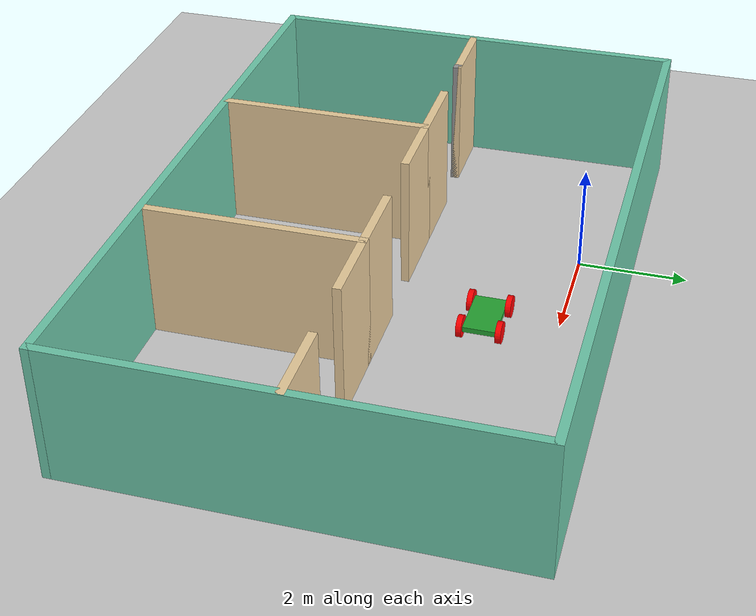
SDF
<sdf version="1.6">
 <world name="default">
  <model name="ground_plane">
   <static>1</static>
   <link name="link">
    <collision name="collision">
     <geometry><plane><normal>0 0 1</normal><size>100 100</size></plane></geometry>
     <surface><friction><ode><mu>100</mu><mu2>50</mu2></ode></friction></surface>
    </collision>
    <visual name="visual">
     <cast_shadows>0</cast_shadows>
     <geometry><plane><normal>0 0 1</normal><size>100 100</size></plane></geometry>
     <material>
      <script><uri>file://media/materials/scripts/gazebo.material</uri><name>Gazebo/Grey</name></script>
     </material>
    </visual>
   </link>
  </model>
  <model name="RobotOffice">
   <pose>1.99675 -2.98962 0 0 -0 0</pose>
   <link name="Wall_17">
    <collision name="Wall_17_Collision">
     <geometry><box><size>12.0004 0.15 2.5</size></box></geometry>
     <pose>0 0 1.25 0 -0 0</pose>
    </collision>
    <visual name="Wall_17_Visual">
     <pose>0 0 1.25 0 -0 0</pose>
     <geometry><box><size>12.0004 0.15 2.5</size></box></geometry>
     <material>
      <script><uri>file://media/materials/scripts/gazebo.material</uri><name>Gazebo/Grey</name></script>
      <ambient>0.435294 0.796078 0.67451 1</ambient>
     </material>
     <meta><layer>0</layer></meta>
    </visual>
    <pose>-2e-06 3.925 0 0 0 -3.14159</pose>
   </link>
   <link name="Wall_19">
    <collision name="Wall_19_Collision">
     <geometry><box><size>8 0.15 2.5</size></box></geometry>
     <pose>0 0 1.25 0 -0 0</pose>
    </collision>
    <visual name="Wall_19_Visual">
     <pose>0 0 1.25 0 -0 0</pose>
     <geometry><box><size>8 0.15 2.5</size></box></geometry>
     <material>
      <script><uri>file://media/materials/scripts/gazebo.material</uri><name>Gazebo/Grey</name></script>
      <ambient>0.435294 0.796078 0.67451 1</ambient>
     </material>
     <meta><layer>0</layer></meta>
    </visual>
    <pose>-5.92522 -3.8e-05 0 0 0 -1.5708</pose>
   </link>
   <link name="Wall_20">
    <collision name="Wall_20_Collision">
     <geometry><box><size>12 0.15 2.5</size></box></geometry>
     <pose>0 0 1.25 0 -0 0</pose>
    </collision>
    <visual name="Wall_20_Visual">
     <pose>0 0 1.25 0 -0 0</pose>
     <geometry><box><size>12 0.15 2.5</size></box></geometry>
     <material>
      <script><uri>file://media/materials/scripts/gazebo.material</uri><name>Gazebo/Grey</name></script>
      <ambient>0.435294 0.796078 0.67451 1</ambient>
     </material>
     <meta><layer>0</layer></meta>
    </visual>
    <pose>-0.000217 -3.92504 0 0 -0 0</pose>
   </link>
   <link name="Wall_21">
    <collision name="Wall_21_Collision">
     <geometry><box><size>8 0.15 2.5</size></box></geometry>
     <pose>0 0 1.25 0 -0 0</pose>
    </collision>
    <visual name="Wall_21_Visual">
     <pose>0 0 1.25 0 -0 0</pose>
     <geometry><box><size>8 0.15 2.5</size></box></geometry>
     <material>
      <script><uri>file://media/materials/scripts/gazebo.material</uri><name>Gazebo/Grey</name></script>
      <ambient>0.435294 0.796078 0.67451 1</ambient>
     </material>
     <meta><layer>0</layer></meta>
    </visual>
    <pose>5.925 0 0 0 -0 1.57074</pose>
   </link>
   <link name="Wall_27">
    <collision name="Wall_27_Collision">
     <geometry><box><size>1.5 0.15 2.5</size></box></geometry>
     <pose>0 0 1.25 0 -0 0</pose>
    </collision>
    <visual name="Wall_27_Visual">
     <pose>0 0 1.25 0 -0 0</pose>
     <geometry><box><size>1.5 0.15 2.5</size></box></geometry>
     <material>
      <script><uri>file://media/materials/scripts/gazebo.material</uri><name>Gazebo/Grey</name></script>
      <ambient>0.921569 0.807843 0.615686 1</ambient>
     </material>
     <meta><layer>0</layer></meta>
    </visual>
    <pose>-5.24522 -0.018038 0 0 -0 0</pose>
   </link>
   <link name="Wall_29">
    <collision name="Wall_29_Collision">
     <geometry><box><size>1.51521 0.15 2.5</size></box></geometry>
     <pose>0 0 1.25 0 -0 0</pose>
    </collision>
    <visual name="Wall_29_Visual">
     <pose>0 0 1.25 0 -0 0</pose>
     <geometry><box><size>1.51521 0.15 2.5</size></box></geometry>
     <material>
      <script><uri>file://media/materials/scripts/gazebo.material</uri><name>Gazebo/Grey</name></script>
      <ambient>0.921569 0.807843 0.615686 1</ambient>
     </material>
     <meta><layer>0</layer></meta>
    </visual>
    <pose>-2.71606 -0.018038 0 0 -0 0</pose>
   </link>
   <link name="Wall_31">
    <collision name="Wall_31_Collision">
     <geometry><box><size>0.15 0.15 2.5</size></box></geometry>
     <pose>0 0 1.25 0 -0 0</pose>
    </collision>
    <visual name="Wall_31_Visual">
     <pose>0 0 1.25 0 -0 0</pose>
     <geometry><box><size>0.15 0.15 2.5</size></box></geometry>
     <material>
      <script><uri>file://media/materials/scripts/gazebo.material</uri><name>Gazebo/Grey</name></script>
      <ambient>1 1 1 1</ambient>
     </material>
     <meta><layer>0</layer></meta>
    </visual>
    <pose>-4.57022 -0.029538 0 0 -0 0</pose>
   </link>
   <link name="Wall_34">
    <collision name="Wall_34_Collision">
     <geometry><box><size>4 0.15 2.5</size></box></geometry>
     <pose>0 0 1.25 0 -0 0</pose>
    </collision>
    <visual name="Wall_34_Visual">
     <pose>0 0 1.25 0 -0 0</pose>
     <geometry><box><size>4 0.15 2.5</size></box></geometry>
     <material>
      <script><uri>file://media/materials/scripts/gazebo.material</uri><name>Gazebo/Grey</name></script>
      <ambient>0.921569 0.807843 0.615686 1</ambient>
     </material>
     <meta><layer>0</layer></meta>
    </visual>
    <pose>-2.03322 -1.94304 0 0 0 -1.5708</pose>
   </link>
   <link name="Wall_36">
    <collision name="Wall_36_Collision">
     <geometry><box><size>1.5 0.15 2.5</size></box></geometry>
     <pose>0 0 1.25 0 -0 0</pose>
    </collision>
    <visual name="Wall_36_Visual">
     <pose>0 0 1.25 0 -0 0</pose>
     <geometry><box><size>1.5 0.15 2.5</size></box></geometry>
     <material>
      <script><uri>file://media/materials/scripts/gazebo.material</uri><name>Gazebo/Grey</name></script>
      <ambient>0.921569 0.807843 0.615686 1</ambient>
     </material>
     <meta><layer>0</layer></meta>
    </visual>
    <pose>-1.35845 -0.018038 0 0 -0 0</pose>
   </link>
   <link name="Wall_43">
    <collision name="Wall_43_Collision">
     <geometry><box><size>1.5 0.15 2.5</size></box></geometry>
     <pose>0 0 1.25 0 -0 0</pose>
    </collision>
    <visual name="Wall_43_Visual">
     <pose>0 0 1.25 0 -0 0</pose>
     <geometry><box><size>1.5 0.15 2.5</size></box></geometry>
     <material>
      <script><uri>file://media/materials/scripts/gazebo.material</uri><name>Gazebo/Grey</name></script>
      <ambient>0.921569 0.807843 0.615686 1</ambient>
     </material>
     <meta><layer>0</layer></meta>
    </visual>
    <pose>5.23878 -0.018038 0 0 -0 0</pose>
   </link>
   <link name="Wall_45">
    <collision name="Wall_45_Collision">
     <geometry><box><size>4 0.15 2.5</size></box></geometry>
     <pose>0 0 1.25 0 -0 0</pose>
    </collision>
    <visual name="Wall_45_Visual">
     <pose>0 0 1.25 0 -0 0</pose>
     <geometry><box><size>4 0.15 2.5</size></box></geometry>
     <material>
      <script><uri>file://media/materials/scripts/gazebo.material</uri><name>Gazebo/Grey</name></script>
      <ambient>0.921569 0.807843 0.615686 1</ambient>
     </material>
     <meta><layer>0</layer></meta>
    </visual>
    <pose>1.92178 -1.94304 0 0 0 -1.5708</pose>
   </link>
   <link name="Wall_47">
    <collision name="Wall_47_Collision">
     <geometry><box><size>1.5 0.15 2.5</size></box></geometry>
     <pose>0 0 1.25 0 -0 0</pose>
    </collision>
    <visual name="Wall_47_Visual">
     <pose>0 0 1.25 0 -0 0</pose>
     <geometry><box><size>1.5 0.15 2.5</size></box></geometry>
     <material>
      <script><uri>file://media/materials/scripts/gazebo.material</uri><name>Gazebo/Grey</name></script>
      <ambient>0.921569 0.807843 0.615686 1</ambient>
     </material>
     <meta><layer>0</layer></meta>
    </visual>
    <pose>1.24678 -0.018038 0 0 -0 0</pose>
   </link>
   <link name="Wall_51">
    <collision name="Wall_51_Collision">
     <geometry><box><size>1.5 0.15 2.5</size></box></geometry>
     <pose>0 0 1.25 0 -0 0</pose>
    </collision>
    <visual name="Wall_51_Visual">
     <pose>0 0 1.25 0 -0 0</pose>
     <geometry><box><size>1.5 0.15 2.5</size></box></geometry>
     <material>
      <script><uri>file://media/materials/scripts/gazebo.material</uri><name>Gazebo/Grey</name></script>
      <ambient>0.921569 0.807843 0.615686 1</ambient>
     </material>
     <meta><layer>0</layer></meta>
    </visual>
    <pose>2.59678 -0.018038 0 0 -0 0</pose>
   </link>
   <static>1</static>
  </model>
  <model name="ServiceRobot">
   <link name="link_0">
    <inertial>
     <mass>1</mass>
     <inertia>
      <ixx>0.166667</ixx>
      <ixy>0</ixy>
      <ixz>0</ixz>
      <iyy>0.166667</iyy>
      <iyz>0</iyz>
      <izz>0.166667</izz>
     </inertia>
    </inertial>
    <visual name="visual">
     <geometry><box><size>1 0.6 0.1</size></box></geometry>
     <material>
      <lighting>1</lighting>
      <script><uri>file://media/materials/scripts/gazebo.material</uri><name>Gazebo/Green</name></script>
      <shader type="pixel"><normal_map>__default__</normal_map></shader>
      <ambient>0 1 0 1</ambient>
      <diffuse>0.7 0.7 0.7 1</diffuse>
      <specular>0.01 0.01 0.01 1</specular>
      <emissive>0 0 0 1</emissive>
     </material>
    </visual>
    <collision name="collision">
     <geometry><box><size>1 0.6 0.1</size></box></geometry>
     <surface>
      <friction>
       <ode><mu>1</mu><mu2>1</mu2><fdir1>0 0 0</fdir1><slip1>0</slip1><slip2>0</slip2></ode>
       <torsional>
        <coefficient>1</coefficient>
        <patch_radius>0</patch_radius>
        <surface_radius>0</surface_radius>
        <use_patch_radius>1</use_patch_radius>
        <ode><slip>0</slip></ode>
       </torsional>
      </friction>
      <bounce><restitution_coefficient>0</restitution_coefficient><threshold>1e+06</threshold></bounce>
      <contact>
       <collide_without_contact>0</collide_without_contact>
       <collide_without_contact_bitmask>1</collide_without_contact_bitmask>
       <collide_bitmask>1</collide_bitmask>
       <ode>
        <soft_cfm>0</soft_cfm>
        <soft_erp>0.2</soft_erp>
        <kp>1e+13</kp>
        <kd>1</kd>
        <max_vel>0.01</max_vel>
        <min_depth>0</min_depth>
       </ode>
       <bullet>
        <split_impulse>1</split_impulse>
        <split_impulse_penetration_threshold>-0.01</split_impulse_penetration_threshold>
        <soft_cfm>0</soft_cfm>
        <soft_erp>0.2</soft_erp>
        <kp>1e+13</kp>
        <kd>1</kd>
       </bullet>
      </contact>
     </surface>
    </collision>
   </link>
   <link name="link_1">
    <pose>0.4 -0.35 0 1.57 -0 0</pose>
    <inertial>
     <mass>1</mass>
     <inertia><ixx>0.145833</ixx><ixy>0</ixy><ixz>0</ixz><iyy>0.145833</iyy><iyz>0</iyz><izz>0.125</izz></inertia>
    </inertial>
    <visual name="visual">
     <geometry><cylinder><radius>0.2</radius><length>0.1</length></cylinder></geometry>
     <material>
      <lighting>1</lighting>
      <script><uri>file://media/materials/scripts/gazebo.material</uri><name>Gazebo/Grey</name></script>
      <shader type="pixel"><normal_map>__default__</normal_map></shader>
      <ambient>1 0 0 1</ambient>
      <diffuse>0.7 0.7 0.7 1</diffuse>
      <specular>0.01 0.01 0.01 1</specular>
      <emissive>0 0 0 1</emissive>
     </material>
    </visual>
    <collision name="collision">
     <geometry><cylinder><radius>0.2</radius><length>0.1</length></cylinder></geometry>
     <surface>
      <friction>
       <ode><mu>1</mu><mu2>1</mu2><fdir1>0 0 0</fdir1><slip1>0</slip1><slip2>0</slip2></ode>
       <torsional>
        <coefficient>1</coefficient>
        <patch_radius>0</patch_radius>
        <surface_radius>0</surface_radius>
        <use_patch_radius>1</use_patch_radius>
        <ode><slip>0</slip></ode>
       </torsional>
      </friction>
      <bounce><restitution_coefficient>0</restitution_coefficient><threshold>1e+06</threshold></bounce>
      <contact>
       <collide_without_contact>0</collide_without_contact>
       <collide_without_contact_bitmask>1</collide_without_contact_bitmask>
       <collide_bitmask>1</collide_bitmask>
       <ode>
        <soft_cfm>0</soft_cfm>
        <soft_erp>0.2</soft_erp>
        <kp>1e+13</kp>
        <kd>1</kd>
        <max_vel>0.01</max_vel>
        <min_depth>0</min_depth>
       </ode>
       <bullet>
        <split_impulse>1</split_impulse>
        <split_impulse_penetration_threshold>-0.01</split_impulse_penetration_threshold>
        <soft_cfm>0</soft_cfm>
        <soft_erp>0.2</soft_erp>
        <kp>1e+13</kp>
        <kd>1</kd>
       </bullet>
      </contact>
     </surface>
    </collision>
   </link>
   <link name="link_1_clone">
    <pose>0.4 0.35 -0 1.57 -0 0</pose>
    <inertial>
     <mass>1</mass>
     <inertia><ixx>0.145833</ixx><ixy>0</ixy><ixz>0</ixz><iyy>0.145833</iyy><iyz>0</iyz><izz>0.125</izz></inertia>
    </inertial>
    <visual name="visual">
     <geometry><cylinder><radius>0.2</radius><length>0.1</length></cylinder></geometry>
     <material>
      <lighting>1</lighting>
      <script><uri>file://media/materials/scripts/gazebo.material</uri><name>Gazebo/Grey</name></script>
      <shader type="pixel"><normal_map>__default__</normal_map></shader>
      <ambient>1 0 0 1</ambient>
      <diffuse>0.7 0.7 0.7 1</diffuse>
      <specular>0.01 0.01 0.01 1</specular>
      <emissive>0 0 0 1</emissive>
     </material>
    </visual>
    <collision name="collision">
     <geometry><cylinder><radius>0.2</radius><length>0.1</length></cylinder></geometry>
     <surface>
      <friction>
       <ode><mu>1</mu><mu2>1</mu2><fdir1>0 0 0</fdir1><slip1>0</slip1><slip2>0</slip2></ode>
       <torsional>
        <coefficient>1</coefficient>
        <patch_radius>0</patch_radius>
        <surface_radius>0</surface_radius>
        <use_patch_radius>1</use_patch_radius>
        <ode><slip>0</slip></ode>
       </torsional>
      </friction>
      <bounce><restitution_coefficient>0</restitution_coefficient><threshold>1e+06</threshold></bounce>
      <contact>
       <collide_without_contact>0</collide_without_contact>
       <collide_without_contact_bitmask>1</collide_without_contact_bitmask>
       <collide_bitmask>1</collide_bitmask>
       <ode>
        <soft_cfm>0</soft_cfm>
        <soft_erp>0.2</soft_erp>
        <kp>1e+13</kp>
        <kd>1</kd>
        <max_vel>0.01</max_vel>
        <min_depth>0</min_depth>
       </ode>
       <bullet>
        <split_impulse>1</split_impulse>
        <split_impulse_penetration_threshold>-0.01</split_impulse_penetration_threshold>
        <soft_cfm>0</soft_cfm>
        <soft_erp>0.2</soft_erp>
        <kp>1e+13</kp>
        <kd>1</kd>
       </bullet>
      </contact>
     </surface>
    </collision>
   </link>
   <link name="link_1_clone_0">
    <pose>-0.4 0.35 -0 1.57 -0 0</pose>
    <inertial>
     <mass>1</mass>
     <inertia><ixx>0.145833</ixx><ixy>0</ixy><ixz>0</ixz><iyy>0.145833</iyy><iyz>0</iyz><izz>0.125</izz></inertia>
     <pose>0 0 -0.1 0 -0 0</pose>
    </inertial>
    <visual name="visual">
     <geometry><cylinder><radius>0.2</radius><length>0.1</length></cylinder></geometry>
     <material>
      <lighting>1</lighting>
      <script><uri>file://media/materials/scripts/gazebo.material</uri><name>Gazebo/Grey</name></script>
      <shader type="pixel"><normal_map>__default__</normal_map></shader>
      <ambient>1 0 0 1</ambient>
      <diffuse>0.7 0.7 0.7 1</diffuse>
      <specular>0.01 0.01 0.01 1</specular>
      <emissive>0 0 0 1</emissive>
     </material>
    </visual>
    <collision name="collision">
     <geometry><cylinder><radius>0.2</radius><length>0.1</length></cylinder></geometry>
     <surface>
      <friction>
       <ode><mu>1</mu><mu2>1</mu2><fdir1>0 0 0</fdir1><slip1>0</slip1><slip2>0</slip2></ode>
       <torsional>
        <coefficient>1</coefficient>
        <patch_radius>0</patch_radius>
        <surface_radius>0</surface_radius>
        <use_patch_radius>1</use_patch_radius>
        <ode><slip>0</slip></ode>
       </torsional>
      </friction>
      <bounce><restitution_coefficient>0</restitution_coefficient><threshold>1e+06</threshold></bounce>
      <contact>
       <collide_without_contact>0</collide_without_contact>
       <collide_without_contact_bitmask>1</collide_without_contact_bitmask>
       <collide_bitmask>1</collide_bitmask>
       <ode>
        <soft_cfm>0</soft_cfm>
        <soft_erp>0.2</soft_erp>
        <kp>1e+13</kp>
        <kd>1</kd>
        <max_vel>0.01</max_vel>
        <min_depth>0</min_depth>
       </ode>
       <bullet>
        <split_impulse>1</split_impulse>
        <split_impulse_penetration_threshold>-0.01</split_impulse_penetration_threshold>
        <soft_cfm>0</soft_cfm>
        <soft_erp>0.2</soft_erp>
        <kp>1e+13</kp>
        <kd>1</kd>
       </bullet>
      </contact>
     </surface>
    </collision>
   </link>
   <link name="link_1_clone_1">
    <pose>-0.4 -0.35 0 1.57 -0 0</pose>
    <inertial>
     <mass>1</mass>
     <inertia><ixx>0.145833</ixx><ixy>0</ixy><ixz>0</ixz><iyy>0.145833</iyy><iyz>0</iyz><izz>0.125</izz></inertia>
    </inertial>
    <visual name="visual">
     <geometry><cylinder><radius>0.2</radius><length>0.1</length></cylinder></geometry>
     <material>
      <lighting>1</lighting>
      <script><uri>file://media/materials/scripts/gazebo.material</uri><name>Gazebo/Grey</name></script>
      <shader type="pixel"><normal_map>__default__</normal_map></shader>
      <ambient>1 0 0 1</ambient>
      <diffuse>0.7 0.7 0.7 1</diffuse>
      <specular>0.01 0.01 0.01 1</specular>
      <emissive>0 0 0 1</emissive>
     </material>
    </visual>
    <collision name="collision">
     <geometry><cylinder><radius>0.2</radius><length>0.1</length></cylinder></geometry>
     <surface>
      <friction>
       <ode><mu>1</mu><mu2>1</mu2><fdir1>0 0 0</fdir1><slip1>0</slip1><slip2>0</slip2></ode>
       <torsional>
        <coefficient>1</coefficient>
        <patch_radius>0</patch_radius>
        <surface_radius>0</surface_radius>
        <use_patch_radius>1</use_patch_radius>
        <ode><slip>0</slip></ode>
       </torsional>
      </friction>
      <bounce><restitution_coefficient>0</restitution_coefficient><threshold>1e+06</threshold></bounce>
      <contact>
       <collide_without_contact>0</collide_without_contact>
       <collide_without_contact_bitmask>1</collide_without_contact_bitmask>
       <collide_bitmask>1</collide_bitmask>
       <ode>
        <soft_cfm>0</soft_cfm>
        <soft_erp>0.2</soft_erp>
        <kp>1e+13</kp>
        <kd>1</kd>
        <max_vel>0.01</max_vel>
        <min_depth>0</min_depth>
       </ode>
       <bullet>
        <split_impulse>1</split_impulse>
        <split_impulse_penetration_threshold>-0.01</split_impulse_penetration_threshold>
        <soft_cfm>0</soft_cfm>
        <soft_erp>0.2</soft_erp>
        <kp>1e+13</kp>
        <kd>1</kd>
       </bullet>
      </contact>
     </surface>
    </collision>
   </link>
   <joint name="link_0_JOINT_0" type="revolute">
    <parent>link_0</parent>
    <child>link_1_clone_0</child>
    <axis>
     <xyz>0 0 1</xyz>
     <use_parent_model_frame>0</use_parent_model_frame>
     <limit>
      <lower>-1.79769e+308</lower>
      <upper>1.79769e+308</upper>
      <effort>-1</effort>
      <velocity>-1</velocity>
     </limit>
     <dynamics>
      <spring_reference>0</spring_reference>
      <spring_stiffness>0</spring_stiffness>
      <damping>0</damping>
      <friction>0</friction>
     </dynamics>
    </axis>
    <physics>
     <ode><limit><cfm>0</cfm><erp>0.2</erp></limit><suspension><cfm>0</cfm><erp>0.2</erp></suspension></ode>
    </physics>
   </joint>
   <joint name="link_0_JOINT_1" type="revolute">
    <parent>link_0</parent>
    <child>link_1_clone</child>
    <axis>
     <xyz>0 0 1</xyz>
     <use_parent_model_frame>0</use_parent_model_frame>
     <limit>
      <lower>-1.79769e+308</lower>
      <upper>1.79769e+308</upper>
      <effort>-1</effort>
      <velocity>-1</velocity>
     </limit>
     <dynamics>
      <spring_reference>0</spring_reference>
      <spring_stiffness>0</spring_stiffness>
      <damping>0</damping>
      <friction>0</friction>
     </dynamics>
    </axis>
    <physics>
     <ode><limit><cfm>0</cfm><erp>0.2</erp></limit><suspension><cfm>0</cfm><erp>0.2</erp></suspension></ode>
    </physics>
   </joint>
   <joint name="link_0_JOINT_2" type="revolute">
    <parent>link_0</parent>
    <child>link_1_clone_1</child>
    <axis>
     <xyz>0 0 1</xyz>
     <use_parent_model_frame>0</use_parent_model_frame>
     <limit>
      <lower>-1.79769e+308</lower>
      <upper>1.79769e+308</upper>
      <effort>-1</effort>
      <velocity>-1</velocity>
     </limit>
     <dynamics>
      <spring_reference>0</spring_reference>
      <spring_stiffness>0</spring_stiffness>
      <damping>0</damping>
      <friction>0</friction>
     </dynamics>
    </axis>
    <physics>
     <ode><limit><cfm>0</cfm><erp>0.2</erp></limit><suspension><cfm>0</cfm><erp>0.2</erp></suspension></ode>
    </physics>
   </joint>
   <joint name="link_0_JOINT_3" type="revolute">
    <parent>link_0</parent>
    <child>link_1</child>
    <axis>
     <xyz>0 0 1</xyz>
     <use_parent_model_frame>0</use_parent_model_frame>
     <limit>
      <lower>-1.79769e+308</lower>
      <upper>1.79769e+308</upper>
      <effort>-1</effort>
      <velocity>-1</velocity>
     </limit>
     <dynamics>
      <spring_reference>0</spring_reference>
      <spring_stiffness>0</spring_stiffness>
      <damping>0</damping>
      <friction>0</friction>
     </dynamics>
    </axis>
    <physics>
     <ode><limit><cfm>0</cfm><erp>0.2</erp></limit><suspension><cfm>0</cfm><erp>0.2</erp></suspension></ode>
    </physics>
   </joint>
   <static>0</static>
   <pose>2.3295 -1.27809 0.200038 3e-06 -0 -0.007652</pose>
  </model>
 </world>
</sdf>
